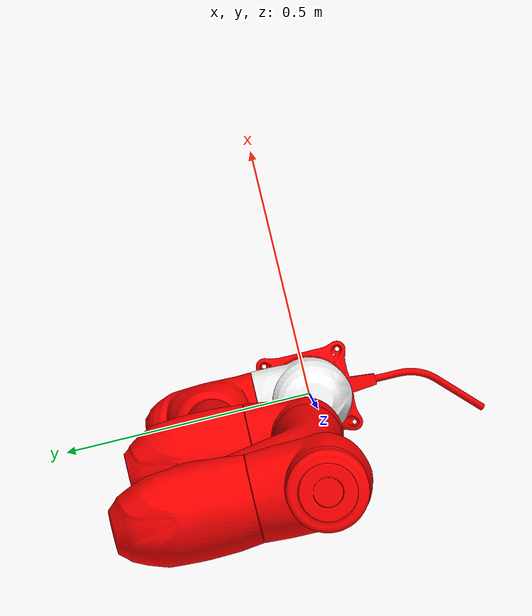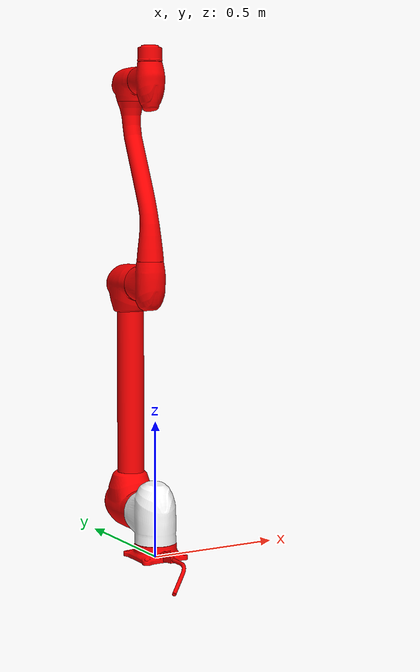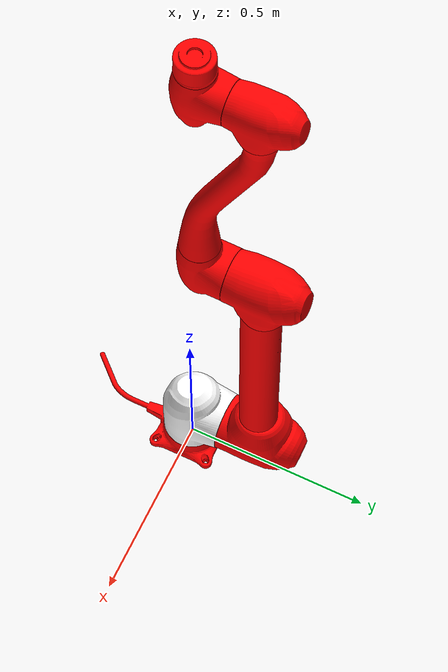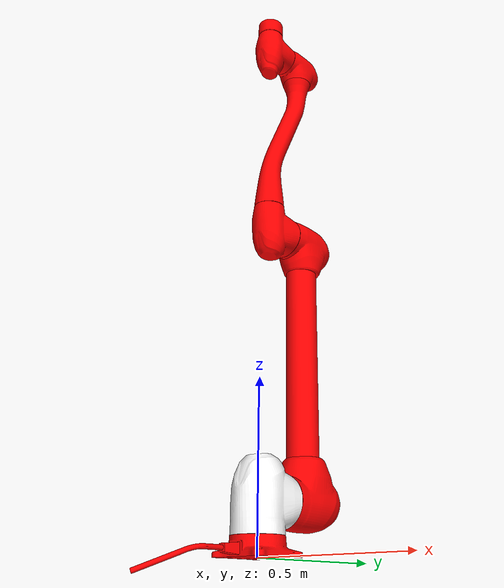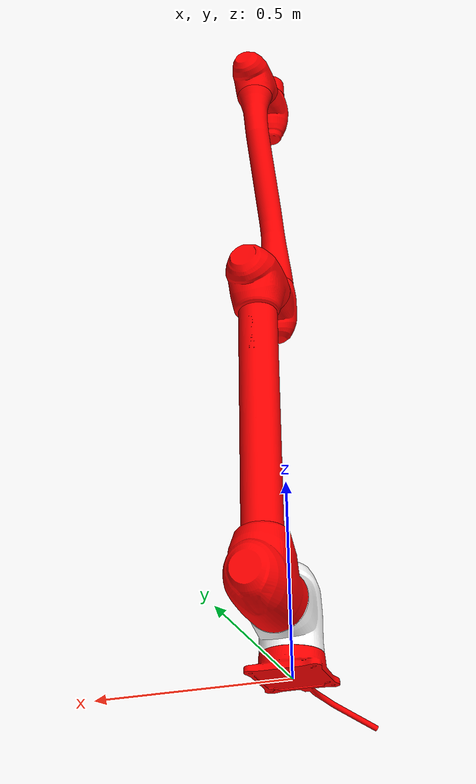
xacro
<?xml version="1.0"?>
<robot xmlns:xacro="http://www.ros.org/wiki/xacro" name="m0617">

  <!-- Args -->
  <xacro:arg name="mode"                default="virtual"/>
  <xacro:arg name="color"               default="white"/>
  <xacro:arg name="namespace"           default=""/>

  <!-- gripper control argument -->
  <xacro:arg name="gripper"             default="none"/>         <!-- none | robotique -->
  <xacro:arg name="gripper_prefix"      default=""/>             <!-- ex) dsr01_ -->
  <xacro:arg name="gripper_parent_link" default="link_6"/>

  <xacro:arg name="use_gazebo"          default="false"/>
  <xacro:arg name="use_mujoco"          default="false"/>
  <xacro:arg name="mujoco_model"        default=""/>
  <xacro:arg name="headless"            default="false"/>
  <xacro:arg name="host"                default=""/>
  <xacro:arg name="port"                default=""/>
  <xacro:arg name="rt_host"             default=""/>
  <xacro:arg name="rt_thread_policy"  default=""/>
  <xacro:arg name="rt_thread_priority"  default=""/>
  <xacro:arg name="mode"                default=""/>
  <xacro:arg name="model"               default=""/>
  <xacro:arg name="update_rate"         default=""/>
  <xacro:arg name="simple"               default="false"/>

  <!-- Local properties -->
  <xacro:property name="cr"             value="$(arg color)"/>
  <xacro:property name="gr"             value="$(arg gripper)"/>
  <xacro:property name="gz"             value="$(arg use_gazebo)"/>
  <xacro:property name="mj"             value="$(arg use_mujoco)"/>
  <xacro:property name="host"           value="$(arg host)"/>
  <xacro:property name="rt_host"        value="$(arg rt_host)"/>
  <xacro:property name="rt_thread_policy" value="$(arg rt_thread_policy)"/>
  <xacro:property name="rt_thread_priority" value="$(arg rt_thread_priority)"/>
  <xacro:property name="port"           value="$(arg port)"/>
  <xacro:property name="mode"           value="$(arg mode)"/>
  <xacro:property name="model"          value="$(arg model)"/>
  <xacro:property name="update_rate"    value="$(arg update_rate)"/>

  <!-- Visual -->
  <xacro:if value="${cr == 'white'}">
    <xacro:include filename="$(find dsr_description2)/xacro/macro.m0617.white.xacro"/>
  </xacro:if>
  <xacro:if value="${cr == 'blue'}">
    <xacro:include filename="$(find dsr_description2)/xacro/macro.m0617.blue.xacro"/>
  </xacro:if>

  <xacro:m0617 namespace="$(arg namespace)" simple="$(arg simple)"/>

  <xacro:unless value="$(arg simple)">
  <!-- World -->
  <link name="world"/>
  <joint name="world_fixed" type="fixed">
    <origin xyz="0 0 0" rpy="0 0 0"/>
    <parent link="world"/>
    <child  link="base_link"/>
  </joint>

  <!-- Gazebo -->
  <xacro:if value="${gz}">
    <xacro:include filename="$(find dsr_description2)/ros2_control/m0617.gz_ros2_control.xacro"/>
    <xacro:m0617_gz_ros2_control
      namespace="$(arg namespace)"
      update_rate="${update_rate}"
    />
  </xacro:if>
  <!-- MuJoCo -->
  <xacro:if value="${mj and not gz}">
    <xacro:include filename="$(find dsr_description2)/ros2_control/m0617.mj_ros2_control.xacro"/>
    <xacro:m0617_mj_ros2_control
      namespace="$(arg namespace)"
      gripper="$(arg gripper)"
      mujoco_model="$(arg mujoco_model)"
      headless="$(arg headless)"
      update_rate="${update_rate}"
    />
  </xacro:if>
  <!-- Default ros2_control -->
  <xacro:unless value="${gz or mj}">
    <xacro:include filename="$(find dsr_description2)/ros2_control/m0617.ros2_control.xacro" />
    <xacro:m0617_ros2_control
      name="m0617"
      host="${host}"
      rt_host="${rt_host}"
      rt_thread_policy="${rt_thread_policy}"
      rt_thread_priority="${rt_thread_priority}"
      port="${port}"
      mode="${mode}"
      model="${model}"
      update_rate="${update_rate}"
    />
  </xacro:unless>

  <xacro:if value="${gr == 'robotiq_2f85'}">

    <xacro:include filename="$(find dsr_description2)/gripper/robotiq.xacro"/>
    <xacro:robotiq_85
      parent="$(arg gripper_parent_link)"
      prefix="$(arg gripper_prefix)"/>

    <xacro:include filename="$(find dsr_description2)/gripper/robotiq.ros2_control.xacro"/>
      <xacro:robotiq_gripper_system
      mode="$(arg mode)"
      joint_name="$(arg gripper_prefix)robotiq_85_left_knuckle_joint"
      system_name="$(arg gripper_prefix)robotiq_gripper_system"
      pos_min="0.0"
      pos_max="0.8"
      init_pos="0.0"
      speed_mult="1.0"
      force_mult="0.5"
      max_speed="0.150"
      max_force="235.0"
      mock_sensor_commands="true" />

  </xacro:if>

  </xacro:unless>
</robot>

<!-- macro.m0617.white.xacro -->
<robot name="m0617" xmlns:xacro="http://www.ros.org/wiki/xacro">
	<xacro:include filename="$(find dsr_description2)/config/macro.gazebo.xacro" />
	<xacro:include filename="$(find dsr_description2)/config/macro.transmission.xacro" />
	<xacro:include filename="$(find dsr_description2)/config/macro.materials.xacro" />
	<xacro:macro name="m0617" params="namespace simple:=false">
		<xacro:dsr_materials />
		<link name="base_link">
			<inertial>
				<mass value="4.12"/>
				<origin xyz="-3.4e-05   -0.004815    0.048482"/>
				<inertia ixx="0.020415" ixy="-3.9311e-06" ixz="2.3764e-06" iyy="0.014927"
					iyz="-0.00051388"
					izz="0.023376"/>
			</inertial>
			<collision>
				<origin rpy="0 0 0" xyz="0 0 0" />
				<geometry>
					<mesh filename="package://dsr_description2/meshes/m0617_collision/MF0617_0_0.dae" scale="0.001 0.001 0.001" />
				</geometry>
			</collision>
			<visual>
				<origin rpy="0 0 0" xyz="0 0 0" />
				<geometry>
					<mesh filename="package://dsr_description2/meshes/m0617_white/MF0617_0_0.dae" scale="0.001 0.001 0.001" />
				</geometry>
			</visual>
		</link>
		<!-- joint 1 -->
		<joint name="joint_1" type="revolute">
			<parent link="base_link" />
			<child link="link_1" />
			<origin rpy="0 0 0" xyz="0 0 0.1530" />
			<axis xyz="0 0 1" />
			<limit effort="346" lower="-6.2832" upper="6.2832" velocity="1.7453"/>
			<dynamics friction="0" />
		</joint>
		<link name="link_1">
			<inertial>
				<mass value="7.8"/>
				<origin xyz="0.000119      0.0428   -0.006383"/>
				<inertia ixx="0.047267" ixy="4.1409e-05" ixz="-5.3877e-05" iyy="0.03119"
					iyz="-0.0019953"
					izz="0.047021"/>
			</inertial>
            <collision>
				<origin rpy="0 0 0" xyz="0 0 0" />
				<geometry>
					<mesh filename="package://dsr_description2/meshes/m0617_collision/MF0617_1_0.dae" scale="0.001 0.001 0.001" />
				</geometry>
			</collision>
			<visual>
				<origin rpy="0 0 0" xyz="0 0 0" />
				<geometry>
					<mesh filename="package://dsr_description2/meshes/m0617_white/MF0617_1_0.dae" scale="0.001 0.001 0.001" />
				</geometry>
			</visual>
		</link>
		<!-- joint2 -->
		<joint name="joint_2" type="revolute">
			<parent link="link_1" />
			<child link="link_2" />
			<origin rpy="0 -1.571 -1.571" xyz="0 0.0345 0" />
			<axis xyz="0 0 1" />
			<limit effort="346" lower="-6.2832" upper="6.2832" velocity="1.7453"/>
			<dynamics friction="0" />
		</joint>
		<link name="link_2">
			<inertial>
				<mass value="11.55"/>
				<origin xyz="0.35752      -5e-05      0.1582"/>
				<inertia ixx="0.039245" ixy="-0.00050916" ixz="-0.0099927" iyy="1.6244" iyz="4.4298e-05"
					izz="1.626"/>
			</inertial>
            <collision>
				<origin rpy="0 0 0" xyz="0 0 0" />
				<geometry>
					<mesh filename="package://dsr_description2/meshes/m0617_collision/MF0617_2_0.dae" scale="0.001 0.001 0.001" />
				</geometry>
			</collision>
			<visual>
				<origin rpy="0 0 0" xyz="0 0 0" />
				<geometry>
					<mesh filename="package://dsr_description2/meshes/m0617_white/MF0617_2_0.dae" scale="0.001 0.001 0.001" />
				</geometry>
			</visual>
			<collision>
				<origin rpy="0 0 0" xyz="0 0 0" />
				<geometry>
					<mesh filename="package://dsr_description2/meshes/m0617_collision/MF0617_2_1.dae" scale="0.001 0.001 0.001" />
				</geometry>
			</collision>
			<visual>
				<origin rpy="0 0 0" xyz="0 0 0" />
				<geometry>
					<mesh filename="package://dsr_description2/meshes/m0617_white/MF0617_2_1.dae" scale="0.001 0.001 0.001" />
				</geometry>
			</visual>
			<collision>
				<origin rpy="0 0 0" xyz="0 0 0" />
				<geometry>
					<mesh filename="package://dsr_description2/meshes/m0617_collision/MF0617_2_2.dae" scale="0.001 0.001 0.001" />
				</geometry>
			</collision>
			<visual>
				<origin rpy="0 0 0" xyz="0 0 0" />
				<geometry>
					<mesh filename="package://dsr_description2/meshes/m0617_white/MF0617_2_2.dae" scale="0.001 0.001 0.001" />
				</geometry>
			</visual>
		</link>
		<!-- joint3 -->
		<joint name="joint_3" type="revolute">
			<parent link="link_2" />
			<child link="link_3" />
			<origin rpy="0 0 1.571" xyz="0.845 0 0" />
			<axis xyz="0 0 1" />
			<limit effort="163" lower="-2.8798" upper="2.8798" velocity="2.618"/>
			<dynamics friction="0" />
		</joint>
		<link name="link_3">
			<inertial>
				<mass value="3.68"/>
				<origin xyz="-1.5e-05   -0.006702    0.044608"/>
				<inertia ixx="0.020579" ixy="1.0111e-05" ixz="-6.784e-07" iyy="0.019181"
					iyz="-0.0009947"
					izz="0.014379"/>
			</inertial>
			<collision>
				<origin rpy="0 0 0" xyz="0 0 0" />
				<geometry>
					<mesh filename="package://dsr_description2/meshes/m0617_collision/MF0617_3_0.dae" scale="0.001 0.001 0.001" />
				</geometry>
			</collision>
			<visual>
				<origin rpy="0 0 0" xyz="0 0 0" />
				<geometry>
					<mesh filename="package://dsr_description2/meshes/m0617_white/MF0617_3_0.dae" scale="0.001 0.001 0.001" />
				</geometry>
			</visual>
		</link>
		<!-- joint4 -->
		<joint name="joint_4" type="revolute">
			<parent link="link_3" />
			<child link="link_4" />
			<origin rpy="1.571 0 0" xyz="0 -0.734 0" />
			<axis xyz="0 0 1" />
			<limit effort="50" lower="-6.2832" upper="6.2832" velocity="3.927"/>
			<dynamics friction="0" />
		</joint>
		<link name="link_4">
			<inertial>
				<mass value="4.28"/>
				<origin xyz="5.7e-05    0.091288    -0.25319"/>
				<inertia ixx="0.35652" ixy="-1.8897e-05" ixz="-4.9971e-05" iyy="0.33627" iyz="-0.076995"
					izz="0.029844"/>
			</inertial>
            <collision>
				<origin rpy="0 0 0" xyz="0 0 0" />
				<geometry>
					<mesh filename="package://dsr_description2/meshes/m0617_collision/MF0617_4_0.dae" scale="0.001 0.001 0.001" />
				</geometry>
			</collision>
			<visual>
				<origin rpy="0 0 0" xyz="0 0 0" />
				<geometry>
					<mesh filename="package://dsr_description2/meshes/m0617_white/MF0617_4_0.dae" scale="0.001 0.001 0.001" />
				</geometry>
			</visual>
			<collision>
				<origin rpy="0 0 0" xyz="0 0 0" />
				<geometry>
					<mesh filename="package://dsr_description2/meshes/m0617_collision/MF0617_4_1.dae" scale="0.001 0.001 0.001" />
				</geometry>
			</collision>
			<visual>
				<origin rpy="0 0 0" xyz="0 0 0" />
				<geometry>
					<mesh filename="package://dsr_description2/meshes/m0617_white/MF0617_4_1.dae" scale="0.001 0.001 0.001" />
				</geometry>
			</visual>
		</link>
		<!-- joint5 -->
		<joint name="joint_5" type="revolute">
			<parent link="link_4" />
			<child link="link_5" />
			<origin rpy="-1.571 0 0" xyz="0 0 0" />
			<axis xyz="0 0 1" />
			<limit effort="50" lower="-6.2832" upper="6.2832" velocity="3.927"/>
			<dynamics friction="0" />
		</joint>
		<link name="link_5">
			<inertial>
				<mass value="2.8"/>
         	<origin xyz="-0.000273    0.003651     0.032087"/>
				<inertia ixx="0.012016" ixy="2.1647e-05" ixz="-4.85e-06" iyy="0.013232" iyz="0.00042654"
					izz="0.010423"/>
			</inertial>
            <collision>
				<origin rpy="0 0 0" xyz="0 0 0" />
				<geometry>
					<mesh filename="package://dsr_description2/meshes/m0617_collision/MF0617_5_0.dae" scale="0.001 0.001 0.001" />
				</geometry>
			</collision>
			<visual>
				<origin rpy="0 0 0" xyz="0 0 0" />
				<geometry>
					<mesh filename="package://dsr_description2/meshes/m0617_white/MF0617_5_0.dae" scale="0.001 0.001 0.001" />
				</geometry>
			</visual>
		</link>
		<!-- joint6 -->
		<joint name="joint_6" type="revolute">
			<parent link="link_5" />
			<child link="link_6" />
			<origin rpy="1.571 0 0" xyz="0 -0.121 0" />
			<axis xyz="0 0 1" />
			<limit effort="50" lower="-6.2832" upper="6.2832" velocity="3.927"/>
			<dynamics friction="0" />
		</joint>
		<link name="link_6">
			<inertial>
				<mass value="1.16"/>
				<origin xyz="-0.000292       7e-06     -0.0539"/>
				<inertia ixx="0.0086448" ixy="3.5791e-06" ixz="5.1469e-06" iyy="0.0045613"
					iyz="5.8483e-06"
					izz="0.0086768"/>
			</inertial>
			<collision>
				<origin rpy="0 0 0" xyz="0 0 0" />
				<geometry>
					<mesh filename="package://dsr_description2/meshes/m0617_collision/MF0617_6_0.dae" scale="0.001 0.001 0.001" />
				</geometry>
			</collision>
			<visual>
				<origin rpy="0 0 0" xyz="0 0 0" />
				<geometry>
					<mesh filename="package://dsr_description2/meshes/m0617_white/MF0617_6_0.dae" scale="0.001 0.001 0.001" />
				</geometry>
			</visual>
		</link>
		<xacro:unless value="${simple}">
		<xacro:dsr_transmission />
		<xacro:dsr_gazebo namespace="${namespace}" />
	</xacro:unless>
	</xacro:macro>
</robot>

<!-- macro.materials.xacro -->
<robot name="dsr_materials" xmlns:xacro="http://www.ros.org/wiki/xacro">
	<xacro:macro name="dsr_materials">
		<material name="black">
			<color rgba="0.0 0.0 0.0 1.0" />
		</material>
		<material name="white">
			<color rgba="1.0 1.0 1.0 1.0" />
		</material>
		<material name="orange">
			<color rgba="1.0 0.4 0.0 1.0" />
		</material>
		<material name="dr_gray">
			<color rgba="0.490 0.490 0.486 1.0" />
		</material>
		<material name="dr_white">
			<color rgba="0.941 0.941 0.941 1.0" />
		</material>
		<material name="dr_blue">
			<color rgba="0 0 0.15 1" />
		</material>
	</xacro:macro>
</robot>
